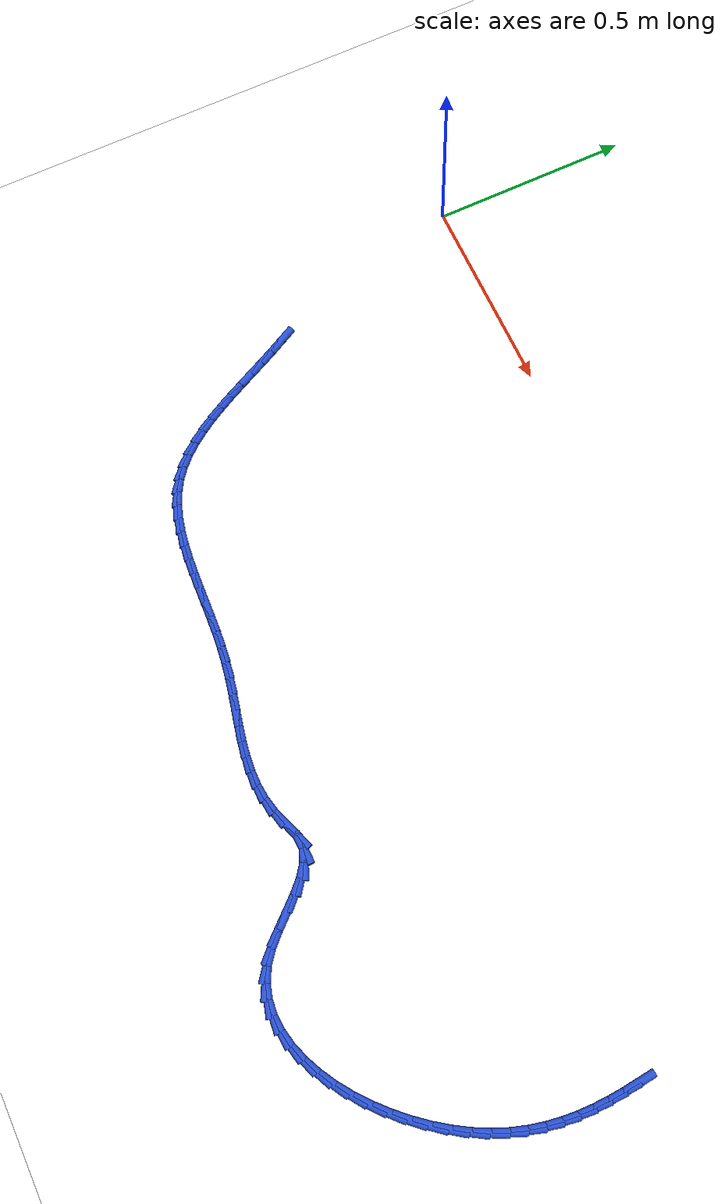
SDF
<sdf version="1.6">
 <world name="default">
  <model name="ground_plane">
   <static>1</static>
   <link name="link">
    <collision name="collision">
     <geometry><plane><normal>0 0 1</normal><size>100 100</size></plane></geometry>
     <surface><friction><ode><mu>100</mu><mu2>50</mu2></ode></friction></surface>
    </collision>
    <visual name="visual">
     <cast_shadows>0</cast_shadows>
     <geometry><plane><normal>0 0 1</normal><size>100 100</size></plane></geometry>
     <material>
      <script><uri>file://media/materials/scripts/gazebo.material</uri><name>Gazebo/WhiteGlow</name></script>
     </material>
    </visual>
   </link>
  </model>
  <model name="line">
   <link name="link_125">
    <pose>2.081778765185256 -0.5392144231013697 0.01 0 1.57 -1.4830322576001156</pose>
    <collision name="collision">
     <geometry><cylinder><radius>0.01</radius><length>0.08</length></cylinder></geometry>
    </collision>
    <visual name="visual">
     <material>
      <script><name>Gazebo/Blue</name><uri>file://media/materials/scripts/gazebo.material</uri></script>
     </material>
     <geometry><cylinder><radius>0.01</radius><length>0.08</length></cylinder></geometry>
    </visual>
   </link>
   <link name="link_126">
    <pose>2.084962172115869 -0.5753935716812748 0.01 0 1.57 -1.5203413720886347</pose>
    <collision name="collision">
     <geometry><cylinder><radius>0.01</radius><length>0.08</length></cylinder></geometry>
    </collision>
    <visual name="visual">
     <material>
      <script><name>Gazebo/Blue</name><uri>file://media/materials/scripts/gazebo.material</uri></script>
     </material>
     <geometry><cylinder><radius>0.01</radius><length>0.08</length></cylinder></geometry>
    </visual>
   </link>
   <link name="link_127">
    <pose>2.086794417077411 -0.6116772216175316 0.01 0 1.57 -1.5655076946423208</pose>
    <collision name="collision">
     <geometry><cylinder><radius>0.01</radius><length>0.08</length></cylinder></geometry>
    </collision>
    <visual name="visual">
     <material>
      <script><name>Gazebo/Blue</name><uri>file://media/materials/scripts/gazebo.material</uri></script>
     </material>
     <geometry><cylinder><radius>0.01</radius><length>0.08</length></cylinder></geometry>
    </visual>
   </link>
   <link name="link_128">
    <pose>2.0869868157790012 -0.6480565541675564 0.01 0 1.57 1.5232229008247018</pose>
    <collision name="collision">
     <geometry><cylinder><radius>0.01</radius><length>0.08</length></cylinder></geometry>
    </collision>
    <visual name="visual">
     <material>
      <script><name>Gazebo/Blue</name><uri>file://media/materials/scripts/gazebo.material</uri></script>
     </material>
     <geometry><cylinder><radius>0.01</radius><length>0.08</length></cylinder></geometry>
    </visual>
   </link>
   <link name="link_129">
    <pose>2.0852506839297558 -0.684522750588766 0.01 0 1.57 1.4630356482986755</pose>
    <collision name="collision">
     <geometry><cylinder><radius>0.01</radius><length>0.08</length></cylinder></geometry>
    </collision>
    <visual name="visual">
     <material>
      <script><name>Gazebo/Blue</name><uri>file://media/materials/scripts/gazebo.material</uri></script>
     </material>
     <geometry><cylinder><radius>0.01</radius><length>0.08</length></cylinder></geometry>
    </visual>
   </link>
   <link name="link_130">
    <pose>2.081297337238796 -0.7210669921385773 0.01 0 1.57 1.3961758954098367</pose>
    <collision name="collision">
     <geometry><cylinder><radius>0.01</radius><length>0.08</length></cylinder></geometry>
    </collision>
    <visual name="visual">
     <material>
      <script><name>Gazebo/Blue</name><uri>file://media/materials/scripts/gazebo.material</uri></script>
     </material>
     <geometry><cylinder><radius>0.01</radius><length>0.08</length></cylinder></geometry>
    </visual>
   </link>
   <link name="link_131">
    <pose>2.07483809141524 -0.7576804600744073 0.01 0 1.57 1.3236282290621382</pose>
    <collision name="collision">
     <geometry><cylinder><radius>0.01</radius><length>0.08</length></cylinder></geometry>
    </collision>
    <visual name="visual">
     <material>
      <script><name>Gazebo/Blue</name><uri>file://media/materials/scripts/gazebo.material</uri></script>
     </material>
     <geometry><cylinder><radius>0.01</radius><length>0.08</length></cylinder></geometry>
    </visual>
   </link>
   <link name="link_132">
    <pose>2.0655842621682052 -0.7943543356536731 0.01 0 1.57 1.2467127567887428</pose>
    <collision name="collision">
     <geometry><cylinder><radius>0.01</radius><length>0.08</length></cylinder></geometry>
    </collision>
    <visual name="visual">
     <material>
      <script><name>Gazebo/Blue</name><uri>file://media/materials/scripts/gazebo.material</uri></script>
     </material>
     <geometry><cylinder><radius>0.01</radius><length>0.08</length></cylinder></geometry>
    </visual>
   </link>
   <link name="link_133">
    <pose>2.0532471652068116 -0.83107980013379 0.01 0 1.57 1.167025577083418</pose>
    <collision name="collision">
     <geometry><cylinder><radius>0.01</radius><length>0.08</length></cylinder></geometry>
    </collision>
    <visual name="visual">
     <material>
      <script><name>Gazebo/Blue</name><uri>file://media/materials/scripts/gazebo.material</uri></script>
     </material>
     <geometry><cylinder><radius>0.01</radius><length>0.08</length></cylinder></geometry>
    </visual>
   </link>
   <link name="link_134">
    <pose>2.0375381162401776 -0.8678480347721758 0.01 0 1.57 1.0871568923517387</pose>
    <collision name="collision">
     <geometry><cylinder><radius>0.01</radius><length>0.08</length></cylinder></geometry>
    </collision>
    <visual name="visual">
     <material>
      <script><name>Gazebo/Blue</name><uri>file://media/materials/scripts/gazebo.material</uri></script>
     </material>
     <geometry><cylinder><radius>0.01</radius><length>0.08</length></cylinder></geometry>
    </visual>
   </link>
   <link name="link_135">
    <pose>2.0182304792063763 -0.9046072971444599 0.01 0 1.57 1.012994710685533</pose>
    <collision name="collision">
     <geometry><cylinder><radius>0.01</radius><length>0.08</length></cylinder></geometry>
    </collision>
    <visual name="visual">
     <material>
      <script><name>Gazebo/Blue</name><uri>file://media/materials/scripts/gazebo.material</uri></script>
     </material>
     <geometry><cylinder><radius>0.01</radius><length>0.08</length></cylinder></geometry>
    </visual>
   </link>
   <link name="link_136">
    <pose>1.99551450095194 -0.9410174538503102 0.01 0 1.57 0.9443941094016499</pose>
    <collision name="collision">
     <geometry><cylinder><radius>0.01</radius><length>0.08</length></cylinder></geometry>
    </collision>
    <visual name="visual">
     <material>
      <script><name>Gazebo/Blue</name><uri>file://media/materials/scripts/gazebo.material</uri></script>
     </material>
     <geometry><cylinder><radius>0.01</radius><length>0.08</length></cylinder></geometry>
    </visual>
   </link>
   <link name="link_137">
    <pose>1.9697521242459248 -0.9766195958004372 0.01 0 1.57 0.8789194315990466</pose>
    <collision name="collision">
     <geometry><cylinder><radius>0.01</radius><length>0.08</length></cylinder></geometry>
    </collision>
    <visual name="visual">
     <material>
      <script><name>Gazebo/Blue</name><uri>file://media/materials/scripts/gazebo.material</uri></script>
     </material>
     <geometry><cylinder><radius>0.01</radius><length>0.08</length></cylinder></geometry>
    </visual>
   </link>
   <link name="link_138">
    <pose>1.9413058252992195 -1.0109544448815246 0.01 0 1.57 0.8144314768651721</pose>
    <collision name="collision">
     <geometry><cylinder><radius>0.01</radius><length>0.08</length></cylinder></geometry>
    </collision>
    <visual name="visual">
     <material>
      <script><name>Gazebo/Blue</name><uri>file://media/materials/scripts/gazebo.material</uri></script>
     </material>
     <geometry><cylinder><radius>0.01</radius><length>0.08</length></cylinder></geometry>
    </visual>
   </link>
   <link name="link_139">
    <pose>1.9105380803227157 -1.0435627229802538 0.01 0 1.57 0.748924764721089</pose>
    <collision name="collision">
     <geometry><cylinder><radius>0.01</radius><length>0.08</length></cylinder></geometry>
    </collision>
    <visual name="visual">
     <material>
      <script><name>Gazebo/Blue</name><uri>file://media/materials/scripts/gazebo.material</uri></script>
     </material>
     <geometry><cylinder><radius>0.01</radius><length>0.08</length></cylinder></geometry>
    </visual>
   </link>
   <link name="link_140">
    <pose>1.8778113655273 -1.073985151983307 0.01 0 1.57 0.6803777167328217</pose>
    <collision name="collision">
     <geometry><cylinder><radius>0.01</radius><length>0.08</length></cylinder></geometry>
    </collision>
    <visual name="visual">
     <material>
      <script><name>Gazebo/Blue</name><uri>file://media/materials/scripts/gazebo.material</uri></script>
     </material>
     <geometry><cylinder><radius>0.01</radius><length>0.08</length></cylinder></geometry>
    </visual>
   </link>
   <link name="link_141">
    <pose>1.8434881571238633 -1.101762453777367 0.01 0 1.57 0.6066152783116471</pose>
    <collision name="collision">
     <geometry><cylinder><radius>0.01</radius><length>0.08</length></cylinder></geometry>
    </collision>
    <visual name="visual">
     <material>
      <script><name>Gazebo/Blue</name><uri>file://media/materials/scripts/gazebo.material</uri></script>
     </material>
     <geometry><cylinder><radius>0.01</radius><length>0.08</length></cylinder></geometry>
    </visual>
   </link>
   <link name="link_142">
    <pose>1.8079309313232932 -1.1264353502491158 0.01 0 1.57 0.5251837325110379</pose>
    <collision name="collision">
     <geometry><cylinder><radius>0.01</radius><length>0.08</length></cylinder></geometry>
    </collision>
    <visual name="visual">
     <material>
      <script><name>Gazebo/Blue</name><uri>file://media/materials/scripts/gazebo.material</uri></script>
     </material>
     <geometry><cylinder><radius>0.01</radius><length>0.08</length></cylinder></geometry>
    </visual>
   </link>
   <link name="link_143">
    <pose>1.7715021643364794 -1.1475445632852364 0.01 0 1.57 0.4332560157152946</pose>
    <collision name="collision">
     <geometry><cylinder><radius>0.01</radius><length>0.08</length></cylinder></geometry>
    </collision>
    <visual name="visual">
     <material>
      <script><name>Gazebo/Blue</name><uri>file://media/materials/scripts/gazebo.material</uri></script>
     </material>
     <geometry><cylinder><radius>0.01</radius><length>0.08</length></cylinder></geometry>
    </visual>
   </link>
   <link name="link_144">
    <pose>1.734564332374311 -1.1646308147724105 0.01 0 1.57 0.3276251094749361</pose>
    <collision name="collision">
     <geometry><cylinder><radius>0.01</radius><length>0.08</length></cylinder></geometry>
    </collision>
    <visual name="visual">
     <material>
      <script><name>Gazebo/Blue</name><uri>file://media/materials/scripts/gazebo.material</uri></script>
     </material>
     <geometry><cylinder><radius>0.01</radius><length>0.08</length></cylinder></geometry>
    </visual>
   </link>
   <link name="link_145">
    <pose>1.6974799116476769 -1.1772348265973216 0.01 0 1.57 0.20491572099229374</pose>
    <collision name="collision">
     <geometry><cylinder><radius>0.01</radius><length>0.08</length></cylinder></geometry>
    </collision>
    <visual name="visual">
     <material>
      <script><name>Gazebo/Blue</name><uri>file://media/materials/scripts/gazebo.material</uri></script>
     </material>
     <geometry><cylinder><radius>0.01</radius><length>0.08</length></cylinder></geometry>
    </visual>
   </link>
   <link name="link_146">
    <pose>1.6606113783674668 -1.1848973206466507 0.01 0 1.57 0.06224211026131348</pose>
    <collision name="collision">
     <geometry><cylinder><radius>0.01</radius><length>0.08</length></cylinder></geometry>
    </collision>
    <visual name="visual">
     <material>
      <script><name>Gazebo/Blue</name><uri>file://media/materials/scripts/gazebo.material</uri></script>
     </material>
     <geometry><cylinder><radius>0.01</radius><length>0.08</length></cylinder></geometry>
    </visual>
   </link>
   <link name="link_147">
    <pose>1.6243212087445695 -1.1871590188070806 0.01 0 1.57 -0.10144530549912358</pose>
    <collision name="collision">
     <geometry><cylinder><radius>0.01</radius><length>0.08</length></cylinder></geometry>
    </collision>
    <visual name="visual">
     <material>
      <script><name>Gazebo/Blue</name><uri>file://media/materials/scripts/gazebo.material</uri></script>
     </material>
     <geometry><cylinder><radius>0.01</radius><length>0.08</length></cylinder></geometry>
    </visual>
   </link>
   <link name="link_148">
    <pose>1.5889718789898741 -1.1835606429652943 0.01 0 1.57 -0.2834595178579937</pose>
    <collision name="collision">
     <geometry><cylinder><radius>0.01</radius><length>0.08</length></cylinder></geometry>
    </collision>
    <visual name="visual">
     <material>
      <script><name>Gazebo/Blue</name><uri>file://media/materials/scripts/gazebo.material</uri></script>
     </material>
     <geometry><cylinder><radius>0.01</radius><length>0.08</length></cylinder></geometry>
    </visual>
   </link>
   <link name="link_149">
    <pose>1.5549258653142697 -1.1736429150079737 0.01 0 1.57 -0.476076808722036</pose>
    <collision name="collision">
     <geometry><cylinder><radius>0.01</radius><length>0.08</length></cylinder></geometry>
    </collision>
    <visual name="visual">
     <material>
      <script><name>Gazebo/Blue</name><uri>file://media/materials/scripts/gazebo.material</uri></script>
     </material>
     <geometry><cylinder><radius>0.01</radius><length>0.08</length></cylinder></geometry>
    </visual>
   </link>
   <link name="link_150">
    <pose>1.522545643928645 -1.1569465568218011 0.01 0 1.57 -0.6632592939615048</pose>
    <collision name="collision">
     <geometry><cylinder><radius>0.01</radius><length>0.08</length></cylinder></geometry>
    </collision>
    <visual name="visual">
     <material>
      <script><name>Gazebo/Blue</name><uri>file://media/materials/scripts/gazebo.material</uri></script>
     </material>
     <geometry><cylinder><radius>0.01</radius><length>0.08</length></cylinder></geometry>
    </visual>
   </link>
   <link name="link_151">
    <pose>1.4921410763197178 -1.1331902316315814 0.01 0 1.57 -0.7923293359830869</pose>
    <collision name="collision">
     <geometry><cylinder><radius>0.01</radius><length>0.08</length></cylinder></geometry>
    </collision>
    <visual name="visual">
     <material>
      <script><name>Gazebo/Blue</name><uri>file://media/materials/scripts/gazebo.material</uri></script>
     </material>
     <geometry><cylinder><radius>0.01</radius><length>0.08</length></cylinder></geometry>
    </visual>
   </link>
   <link name="link_152">
    <pose>1.4634337400425712 -1.104082160369393 0.01 0 1.57 -0.850336839274145</pose>
    <collision name="collision">
     <geometry><cylinder><radius>0.01</radius><length>0.08</length></cylinder></geometry>
    </collision>
    <visual name="visual">
     <material>
      <script><name>Gazebo/Blue</name><uri>file://media/materials/scripts/gazebo.material</uri></script>
     </material>
     <geometry><cylinder><radius>0.01</radius><length>0.08</length></cylinder></geometry>
    </visual>
   </link>
   <link name="link_153">
    <pose>1.4357764812550717 -1.0725776019260131 0.01 0 1.57 -0.8483289842374254</pose>
    <collision name="collision">
     <geometry><cylinder><radius>0.01</radius><length>0.08</length></cylinder></geometry>
    </collision>
    <visual name="visual">
     <material>
      <script><name>Gazebo/Blue</name><uri>file://media/materials/scripts/gazebo.material</uri></script>
     </material>
     <geometry><cylinder><radius>0.01</radius><length>0.08</length></cylinder></geometry>
    </visual>
   </link>
   <link name="link_154">
    <pose>1.408516468361614 -1.0416510171754347 0.01 0 1.57 -0.78282121412587</pose>
    <collision name="collision">
     <geometry><cylinder><radius>0.01</radius><length>0.08</length></cylinder></geometry>
    </collision>
    <visual name="visual">
     <material>
      <script><name>Gazebo/Blue</name><uri>file://media/materials/scripts/gazebo.material</uri></script>
     </material>
     <geometry><cylinder><radius>0.01</radius><length>0.08</length></cylinder></geometry>
    </visual>
   </link>
   <link name="link_155">
    <pose>1.3810008697665932 -1.0142768669916506 0.01 0 1.57 -0.6328169266444982</pose>
    <collision name="collision">
     <geometry><cylinder><radius>0.01</radius><length>0.08</length></cylinder></geometry>
    </collision>
    <visual name="visual">
     <material>
      <script><name>Gazebo/Blue</name><uri>file://media/materials/scripts/gazebo.material</uri></script>
     </material>
     <geometry><cylinder><radius>0.01</radius><length>0.08</length></cylinder></geometry>
    </visual>
   </link>
   <link name="link_156">
    <pose>1.3525768538744034 -0.9934296122486539 0.01 0 1.57 -0.3617328170650545</pose>
    <collision name="collision">
     <geometry><cylinder><radius>0.01</radius><length>0.08</length></cylinder></geometry>
    </collision>
    <visual name="visual">
     <material>
      <script><name>Gazebo/Blue</name><uri>file://media/materials/scripts/gazebo.material</uri></script>
     </material>
     <geometry><cylinder><radius>0.01</radius><length>0.08</length></cylinder></geometry>
    </visual>
   </link>
   <link name="link_157">
    <pose>1.3225915890894395 -0.982083713820438 0.01 0 1.57 0.034462521415546565</pose>
    <collision name="collision">
     <geometry><cylinder><radius>0.01</radius><length>0.08</length></cylinder></geometry>
    </collision>
    <visual name="visual">
     <material>
      <script><name>Gazebo/Blue</name><uri>file://media/materials/scripts/gazebo.material</uri></script>
     </material>
     <geometry><cylinder><radius>0.01</radius><length>0.08</length></cylinder></geometry>
    </visual>
   </link>
   <link name="link_158">
    <pose>1.2903952123330307 -0.9831937216179849 0.01 0 1.57 0.3415665301838356</pose>
    <collision name="collision">
     <geometry><cylinder><radius>0.01</radius><length>0.08</length></cylinder></geometry>
    </collision>
    <visual name="visual">
     <material>
      <script><name>Gazebo/Blue</name><uri>file://media/materials/scripts/gazebo.material</uri></script>
     </material>
     <geometry><cylinder><radius>0.01</radius><length>0.08</length></cylinder></geometry>
    </visual>
   </link>
   <link name="link_159">
    <pose>1.2559766577202751 -0.9954295317733362 0.01 0 1.57 0.34713440279955593</pose>
    <collision name="collision">
     <geometry><cylinder><radius>0.01</radius><length>0.08</length></cylinder></geometry>
    </collision>
    <visual name="visual">
     <material>
      <script><name>Gazebo/Blue</name><uri>file://media/materials/scripts/gazebo.material</uri></script>
     </material>
     <geometry><cylinder><radius>0.01</radius><length>0.08</length></cylinder></geometry>
    </visual>
   </link>
   <link name="link_160">
    <pose>1.2207140277295343 -1.0081870030864704 0.01 0 1.57 0.21691807315524042</pose>
    <collision name="collision">
     <geometry><cylinder><radius>0.01</radius><length>0.08</length></cylinder></geometry>
    </collision>
    <visual name="visual">
     <material>
      <script><name>Gazebo/Blue</name><uri>file://media/materials/scripts/gazebo.material</uri></script>
     </material>
     <geometry><cylinder><radius>0.01</radius><length>0.08</length></cylinder></geometry>
    </visual>
   </link>
   <link name="link_161">
    <pose>1.185354194305425 -1.015979801169438 0.01 0 1.57 0.09311378906788143</pose>
    <collision name="collision">
     <geometry><cylinder><radius>0.01</radius><length>0.08</length></cylinder></geometry>
    </collision>
    <visual name="visual">
     <material>
      <script><name>Gazebo/Blue</name><uri>file://media/materials/scripts/gazebo.material</uri></script>
     </material>
     <geometry><cylinder><radius>0.01</radius><length>0.08</length></cylinder></geometry>
    </visual>
   </link>
   <link name="link_162">
    <pose>1.1498763378939865 -1.019292859281115 0.01 0 1.57 -0.012756627723162942</pose>
    <collision name="collision">
     <geometry><cylinder><radius>0.01</radius><length>0.08</length></cylinder></geometry>
    </collision>
    <visual name="visual">
     <material>
      <script><name>Gazebo/Blue</name><uri>file://media/materials/scripts/gazebo.material</uri></script>
     </material>
     <geometry><cylinder><radius>0.01</radius><length>0.08</length></cylinder></geometry>
    </visual>
   </link>
   <link name="link_163">
    <pose>1.1142304545151696 -1.0188381133495503 0.01 0 1.57 -0.09757622321990454</pose>
    <collision name="collision">
     <geometry><cylinder><radius>0.01</radius><length>0.08</length></cylinder></geometry>
    </collision>
    <visual name="visual">
     <material>
      <script><name>Gazebo/Blue</name><uri>file://media/materials/scripts/gazebo.material</uri></script>
     </material>
     <geometry><cylinder><radius>0.01</radius><length>0.08</length></cylinder></geometry>
    </visual>
   </link>
   <link name="link_164">
    <pose>1.0783665401889262 -1.0153274993027943 0.01 0 1.57 -0.1606362947959531</pose>
    <collision name="collision">
     <geometry><cylinder><radius>0.01</radius><length>0.08</length></cylinder></geometry>
    </collision>
    <visual name="visual">
     <material>
      <script><name>Gazebo/Blue</name><uri>file://media/materials/scripts/gazebo.material</uri></script>
     </material>
     <geometry><cylinder><radius>0.01</radius><length>0.08</length></cylinder></geometry>
    </visual>
   </link>
   <link name="link_165">
    <pose>1.0422345909352093 -1.0094729530688966 0.01 0 1.57 -0.20257493020146067</pose>
    <collision name="collision">
     <geometry><cylinder><radius>0.01</radius><length>0.08</length></cylinder></geometry>
    </collision>
    <visual name="visual">
     <material>
      <script><name>Gazebo/Blue</name><uri>file://media/materials/scripts/gazebo.material</uri></script>
     </material>
     <geometry><cylinder><radius>0.01</radius><length>0.08</length></cylinder></geometry>
    </visual>
   </link>
   <link name="link_166">
    <pose>1.0057846027739707 -1.001986410575907 0.01 0 1.57 -0.22448021240015573</pose>
    <collision name="collision">
     <geometry><cylinder><radius>0.01</radius><length>0.08</length></cylinder></geometry>
    </collision>
    <visual name="visual">
     <material>
      <script><name>Gazebo/Blue</name><uri>file://media/materials/scripts/gazebo.material</uri></script>
     </material>
     <geometry><cylinder><radius>0.01</radius><length>0.08</length></cylinder></geometry>
    </visual>
   </link>
   <link name="link_167">
    <pose>0.9689665717251621 -0.9935798077518756 0.01 0 1.57 -0.22735427626382715</pose>
    <collision name="collision">
     <geometry><cylinder><radius>0.01</radius><length>0.08</length></cylinder></geometry>
    </collision>
    <visual name="visual">
     <material>
      <script><name>Gazebo/Blue</name><uri>file://media/materials/scripts/gazebo.material</uri></script>
     </material>
     <geometry><cylinder><radius>0.01</radius><length>0.08</length></cylinder></geometry>
    </visual>
   </link>
   <link name="link_168">
    <pose>0.9317304938087353 -0.9849650805248522 0.01 0 1.57 -0.21189094455818017</pose>
    <collision name="collision">
     <geometry><cylinder><radius>0.01</radius><length>0.08</length></cylinder></geometry>
    </collision>
    <visual name="visual">
     <material>
      <script><name>Gazebo/Blue</name><uri>file://media/materials/scripts/gazebo.material</uri></script>
     </material>
     <geometry><cylinder><radius>0.01</radius><length>0.08</length></cylinder></geometry>
    </visual>
   </link>
   <link name="link_169">
    <pose>0.8940263650446422 -0.9768541648228865 0.01 0 1.57 -0.17847751980291351</pose>
    <collision name="collision">
     <geometry><cylinder><radius>0.01</radius><length>0.08</length></cylinder></geometry>
    </collision>
    <visual name="visual">
     <material>
      <script><name>Gazebo/Blue</name><uri>file://media/materials/scripts/gazebo.material</uri></script>
     </material>
     <geometry><cylinder><radius>0.01</radius><length>0.08</length></cylinder></geometry>
    </visual>
   </link>
   <link name="link_170">
    <pose>0.8558041818224532 -0.9699589949789001 0.01 0 1.57 -0.13270097250883114</pose>
    <collision name="collision">
     <geometry><cylinder><radius>0.01</radius><length>0.08</length></cylinder></geometry>
    </collision>
    <visual name="visual">
     <material>
      <script><name>Gazebo/Blue</name><uri>file://media/materials/scripts/gazebo.material</uri></script>
     </material>
     <geometry><cylinder><radius>0.01</radius><length>0.08</length></cylinder></geometry>
    </visual>
   </link>
   <link name="link_171">
    <pose>0.8170612407200575 -0.9647873766988345 0.01 0 1.57 -0.0945962895590025</pose>
    <collision name="collision">
     <geometry><cylinder><radius>0.01</radius><length>0.08</length></cylinder></geometry>
    </collision>
    <visual name="visual">
     <material>
      <script><name>Gazebo/Blue</name><uri>file://media/materials/scripts/gazebo.material</uri></script>
     </material>
     <geometry><cylinder><radius>0.01</radius><length>0.08</length></cylinder></geometry>
    </visual>
   </link>
   <link name="link_172">
    <pose>0.7779728948210167 -0.961078695280138 0.01 0 1.57 -0.06841372954349541</pose>
    <collision name="collision">
     <geometry><cylinder><radius>0.01</radius><length>0.08</length></cylinder></geometry>
    </collision>
    <visual name="visual">
     <material>
      <script><name>Gazebo/Blue</name><uri>file://media/materials/scripts/gazebo.material</uri></script>
     </material>
     <geometry><cylinder><radius>0.01</radius><length>0.08</length></cylinder></geometry>
    </visual>
   </link>
   <link name="link_173">
    <pose>0.7387563875513495 -0.9583915541165495 0.01 0 1.57 -0.05379767330557478</pose>
    <collision name="collision">
     <geometry><cylinder><radius>0.01</radius><length>0.08</length></cylinder></geometry>
    </collision>
    <visual name="visual">
     <material>
      <script><name>Gazebo/Blue</name><uri>file://media/materials/scripts/gazebo.material</uri></script>
     </material>
     <geometry><cylinder><radius>0.01</radius><length>0.08</length></cylinder></geometry>
    </visual>
   </link>
   <link name="link_174">
    <pose>0.6996289623370766 -0.9562845566018088 0.01 0 1.57 -0.05065715784684932</pose>
    <collision name="collision">
     <geometry><cylinder><radius>0.01</radius><length>0.08</length></cylinder></geometry>
    </collision>
    <visual name="visual">
     <material>
      <script><name>Gazebo/Blue</name><uri>file://media/materials/scripts/gazebo.material</uri></script>
     </material>
     <geometry><cylinder><radius>0.01</radius><length>0.08</length></cylinder></geometry>
    </visual>
   </link>
   <link name="link_175">
    <pose>0.6608078626042169 -0.9543163061296549 0.01 0 1.57 -0.059226902059576286</pose>
    <collision name="collision">
     <geometry><cylinder><radius>0.01</radius><length>0.08</length></cylinder></geometry>
    </collision>
    <visual name="visual">
     <material>
      <script><name>Gazebo/Blue</name><uri>file://media/materials/scripts/gazebo.material</uri></script>
     </material>
     <geometry><cylinder><radius>0.01</radius><length>0.08</length></cylinder></geometry>
    </visual>
   </link>
   <link name="link_176">
    <pose>0.6225103317787896 -0.9520454060938276 0.01 0 1.57 -0.08010536403308048</pose>
    <collision name="collision">
     <geometry><cylinder><radius>0.01</radius><length>0.08</length></cylinder></geometry>
    </collision>
    <visual name="visual">
     <material>
      <script><name>Gazebo/Blue</name><uri>file://media/materials/scripts/gazebo.material</uri></script>
     </material>
     <geometry><cylinder><radius>0.01</radius><length>0.08</length></cylinder></geometry>
    </visual>
   </link>
   <link name="link_177">
    <pose>0.5849536132868158 -0.949030459888066 0.01 0 1.57 -0.11426895657563423</pose>
    <collision name="collision">
     <geometry><cylinder><radius>0.01</radius><length>0.08</length></cylinder></geometry>
    </collision>
    <visual name="visual">
     <material>
      <script><name>Gazebo/Blue</name><uri>file://media/materials/scripts/gazebo.material</uri></script>
     </material>
     <geometry><cylinder><radius>0.01</radius><length>0.08</length></cylinder></geometry>
    </visual>
   </link>
   <link name="link_178">
    <pose>0.5483549505543145 -0.9448300709061095 0.01 0 1.57 -0.16304216948428038</pose>
    <collision name="collision">
     <geometry><cylinder><radius>0.01</radius><length>0.08</length></cylinder></geometry>
    </collision>
    <visual name="visual">
     <material>
      <script><name>Gazebo/Blue</name><uri>file://media/materials/scripts/gazebo.material</uri></script>
     </material>
     <geometry><cylinder><radius>0.01</radius><length>0.08</length></cylinder></geometry>
    </visual>
   </link>
   <link name="link_179">
    <pose>0.5129315870073052 -0.9390028425416975 0.01 0 1.57 -0.2279758245713576</pose>
    <collision name="collision">
     <geometry><cylinder><radius>0.01</radius><length>0.08</length></cylinder></geometry>
    </collision>
    <visual name="visual">
     <material>
      <script><name>Gazebo/Blue</name><uri>file://media/materials/scripts/gazebo.material</uri></script>
     </material>
     <geometry><cylinder><radius>0.01</radius><length>0.08</length></cylinder></geometry>
    </visual>
   </link>
   <link name="link_180">
    <pose>0.4789007660718077 -0.9311073781885696 0.01 0 1.57 -0.3105523209853957</pose>
    <collision name="collision">
     <geometry><cylinder><radius>0.01</radius><length>0.08</length></cylinder></geometry>
    </collision>
    <visual name="visual">
     <material>
      <script><name>Gazebo/Blue</name><uri>file://media/materials/scripts/gazebo.material</uri></script>
     </material>
     <geometry><cylinder><radius>0.01</radius><length>0.08</length></cylinder></geometry>
    </visual>
   </link>
   <link name="link_181">
    <pose>0.44647973117384154 -0.920702281240465 0.01 0 1.57 -0.41162138165431256</pose>
    <collision name="collision">
     <geometry><cylinder><radius>0.01</radius><length>0.08</length></cylinder></geometry>
    </collision>
    <visual name="visual">
     <material>
      <script><name>Gazebo/Blue</name><uri>file://media/materials/scripts/gazebo.material</uri></script>
     </material>
     <geometry><cylinder><radius>0.01</radius><length>0.08</length></cylinder></geometry>
    </visual>
   </link>
   <link name="link_182">
    <pose>0.4158857257394265 -0.9073461550911228 0.01 0 1.57 -0.5305416144175648</pose>
    <collision name="collision">
     <geometry><cylinder><radius>0.01</radius><length>0.08</length></cylinder></geometry>
    </collision>
    <visual name="visual">
     <material>
      <script><name>Gazebo/Blue</name><uri>file://media/materials/scripts/gazebo.material</uri></script>
     </material>
     <geometry><cylinder><radius>0.01</radius><length>0.08</length></cylinder></geometry>
    </visual>
   </link>
   <link name="link_183">
    <pose>0.3873359931942011 -0.8905976031350166 0.01 0 1.57 -0.6593343776409532</pose>
    <collision name="collision">
     <geometry><cylinder><radius>0.01</radius><length>0.08</length></cylinder></geometry>
    </collision>
    <visual name="visual">
     <material>
      <script><name>Gazebo/Blue</name><uri>file://media/materials/scripts/gazebo.material</uri></script>
     </material>
     <geometry><cylinder><radius>0.01</radius><length>0.08</length></cylinder></geometry>
    </visual>
   </link>
   <link name="link_184">
    <pose>0.3609708699183266 -0.870163606707665 0.01 0 1.57 -0.774514736985431</pose>
    <collision name="collision">
     <geometry><cylinder><radius>0.01</radius><length>0.08</length></cylinder></geometry>
    </collision>
    <visual name="visual">
     <material>
      <script><name>Gazebo/Blue</name><uri>file://media/materials/scripts/gazebo.material</uri></script>
     </material>
     <geometry><cylinder><radius>0.01</radius><length>0.08</length></cylinder></geometry>
    </visual>
   </link>
   <link name="link_185">
    <pose>0.33662463516038427 -0.8463416278572815 0.01 0 1.57 -0.8702543569017452</pose>
    <collision name="collision">
     <geometry><cylinder><radius>0.01</radius><length>0.08</length></cylinder></geometry>
    </collision>
    <visual name="visual">
     <material>
      <script><name>Gazebo/Blue</name><uri>file://media/materials/scripts/gazebo.material</uri></script>
     </material>
     <geometry><cylinder><radius>0.01</radius><length>0.08</length></cylinder></geometry>
    </visual>
   </link>
   <link name="link_186">
    <pose>0.3140554446448894 -0.8195759949132608 0.01 0 1.57 -0.9476014697988793</pose>
    <collision name="collision">
     <geometry><cylinder><radius>0.01</radius><length>0.08</length></cylinder></geometry>
    </collision>
    <visual name="visual">
     <material>
      <script><name>Gazebo/Blue</name><uri>file://media/materials/scripts/gazebo.material</uri></script>
     </material>
     <geometry><cylinder><radius>0.01</radius><length>0.08</length></cylinder></geometry>
    </visual>
   </link>
   <link name="link_187">
    <pose>0.29302145409635727 -0.7903110362049963 0.01 0 1.57 -1.0084024713767392</pose>
    <collision name="collision">
     <geometry><cylinder><radius>0.01</radius><length>0.08</length></cylinder></geometry>
    </collision>
    <visual name="visual">
     <material>
      <script><name>Gazebo/Blue</name><uri>file://media/materials/scripts/gazebo.material</uri></script>
     </material>
     <geometry><cylinder><radius>0.01</radius><length>0.08</length></cylinder></geometry>
    </visual>
   </link>
   <link name="link_188">
    <pose>0.2732808192393033 -0.7589910800618823 0.01 0 1.57 -1.0545939402274902</pose>
    <collision name="collision">
     <geometry><cylinder><radius>0.01</radius><length>0.08</length></cylinder></geometry>
    </collision>
    <visual name="visual">
     <material>
      <script><name>Gazebo/Blue</name><uri>file://media/materials/scripts/gazebo.material</uri></script>
     </material>
     <geometry><cylinder><radius>0.01</radius><length>0.08</length></cylinder></geometry>
    </visual>
   </link>
   <link name="link_189">
    <pose>0.2545916957982424 -0.7260604548133119 0.01 0 1.57 -1.0878426335298552</pose>
    <collision name="collision">
     <geometry><cylinder><radius>0.01</radius><length>0.08</length></cylinder></geometry>
    </collision>
    <visual name="visual">
     <material>
      <script><name>Gazebo/Blue</name><uri>file://media/materials/scripts/gazebo.material</uri></script>
     </material>
     <geometry><cylinder><radius>0.01</radius><length>0.08</length></cylinder></geometry>
    </visual>
   </link>
   <link name="link_190">
    <pose>0.23671223949769066 -0.6919634887886805 0.01 0 1.57 -1.1093995768134004</pose>
    <collision name="collision">
     <geometry><cylinder><radius>0.01</radius><length>0.08</length></cylinder></geometry>
    </collision>
    <visual name="visual">
     <material>
      <script><name>Gazebo/Blue</name><uri>file://media/materials/scripts/gazebo.material</uri></script>
     </material>
     <geometry><cylinder><radius>0.01</radius><length>0.08</length></cylinder></geometry>
    </visual>
   </link>
   <link name="link_191">
    <pose>0.219400606062163 -0.6571445103173816 0.01 0 1.57 -1.1200565356716734</pose>
    <collision name="collision">
     <geometry><cylinder><radius>0.01</radius><length>0.08</length></cylinder></geometry>
    </collision>
    <visual name="visual">
     <material>
      <script><name>Gazebo/Blue</name><uri>file://media/materials/scripts/gazebo.material</uri></script>
     </material>
     <geometry><cylinder><radius>0.01</radius><length>0.08</length></cylinder></geometry>
    </visual>
   </link>
   <link name="link_192">
    <pose>0.20241495121617484 -0.6220478477288093 0.01 0 1.57 -1.120137349761226</pose>
    <collision name="collision">
     <geometry><cylinder><radius>0.01</radius><length>0.08</length></cylinder></geometry>
    </collision>
    <visual name="visual">
     <material>
      <script><name>Gazebo/Blue</name><uri>file://media/materials/scripts/gazebo.material</uri></script>
     </material>
     <geometry><cylinder><radius>0.01</radius><length>0.08</length></cylinder></geometry>
    </visual>
   </link>
   <link name="link_193">
    <pose>0.18551343068424142 -0.5871178293523573 0.01 0 1.57 -1.1095822813315135</pose>
    <collision name="collision">
     <geometry><cylinder><radius>0.01</radius><length>0.08</length></cylinder></geometry>
    </collision>
    <visual name="visual">
     <material>
      <script><name>Gazebo/Blue</name><uri>file://media/materials/scripts/gazebo.material</uri></script>
     </material>
     <geometry><cylinder><radius>0.01</radius><length>0.08</length></cylinder></geometry>
    </visual>
   </link>
   <link name="link_194">
    <pose>0.16845653568204466 -0.552795478656164 0.01 0 1.57 -1.0946165984758933</pose>
    <collision name="collision">
     <geometry><cylinder><radius>0.01</radius><length>0.08</length></cylinder></geometry>
    </collision>
    <visual name="visual">
     <material>
      <script><name>Gazebo/Blue</name><uri>file://media/materials/scripts/gazebo.material</uri></script>
     </material>
     <geometry><cylinder><radius>0.01</radius><length>0.08</length></cylinder></geometry>
    </visual>
   </link>
   <link name="link_195">
    <pose>0.15117263283235635 -0.5192842652538933 0.01 0 1.57 -1.0864422591291134</pose>
    <collision name="collision">
     <geometry><cylinder><radius>0.01</radius><length>0.08</length></cylinder></geometry>
    </collision>
    <visual name="visual">
     <material>
      <script><name>Gazebo/Blue</name><uri>file://media/materials/scripts/gazebo.material</uri></script>
     </material>
     <geometry><cylinder><radius>0.01</radius><length>0.08</length></cylinder></geometry>
    </visual>
   </link>
  </model>
 </world>
</sdf>
